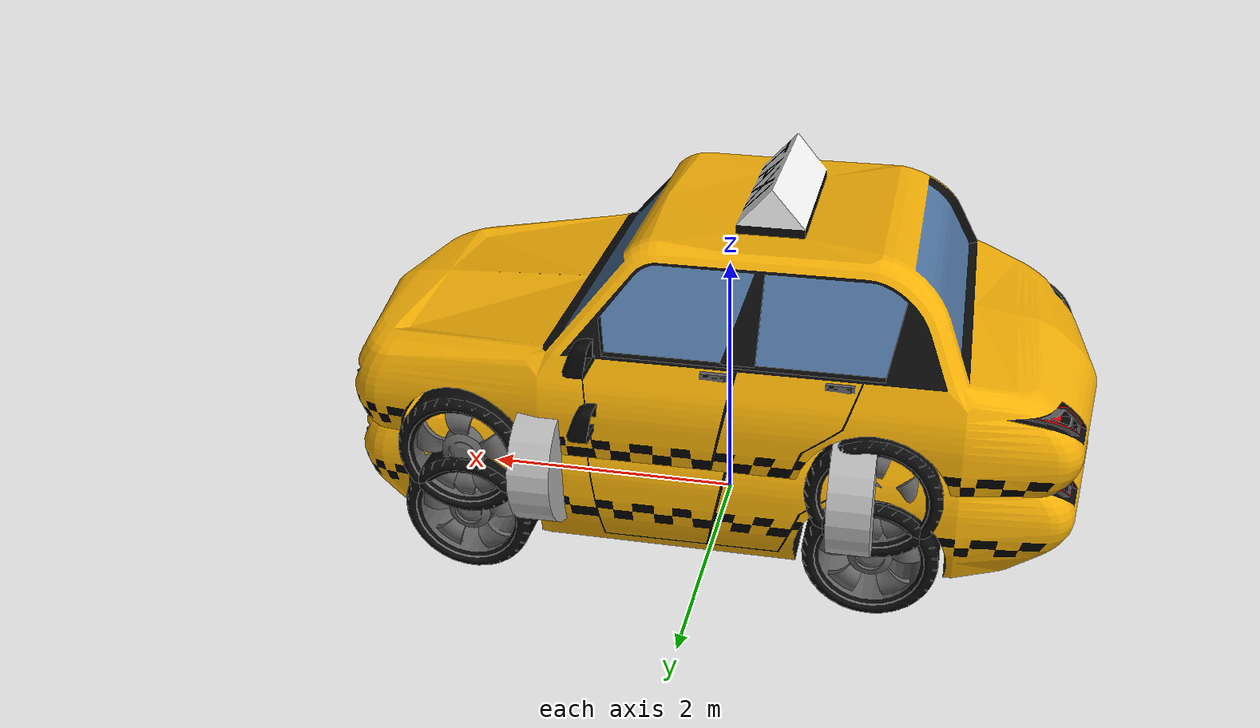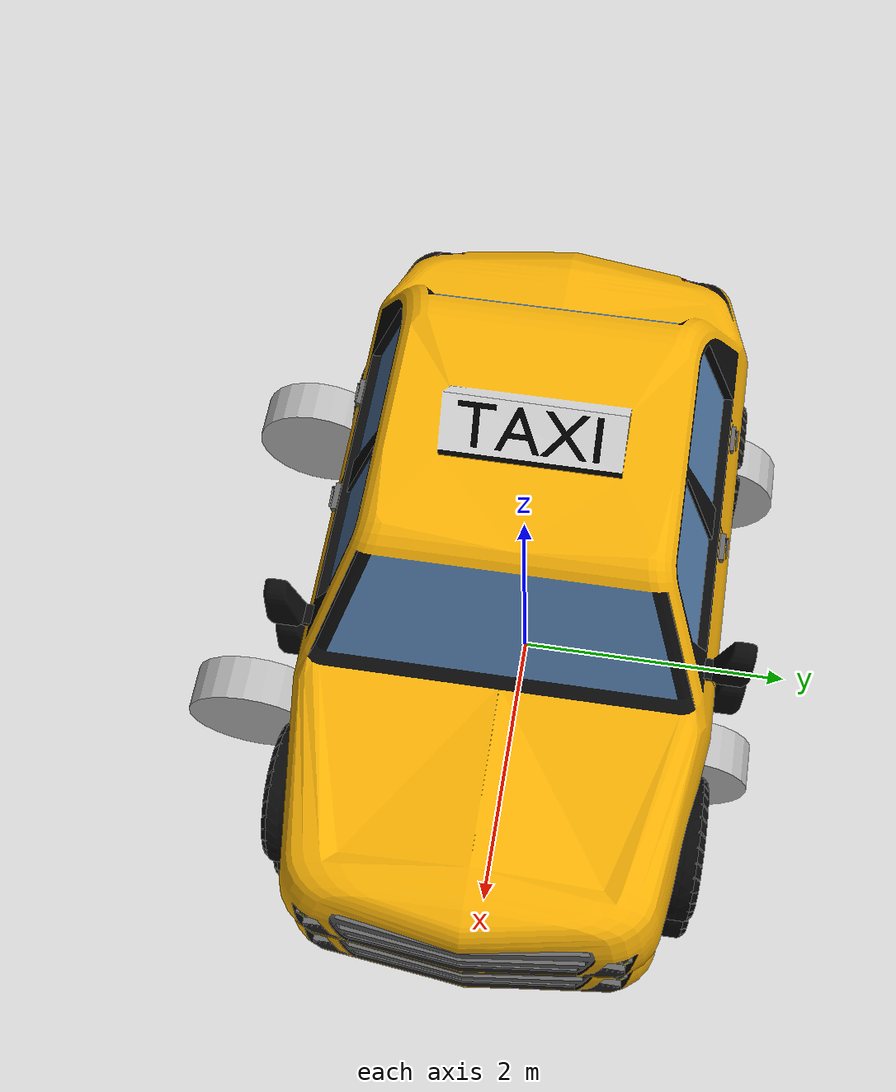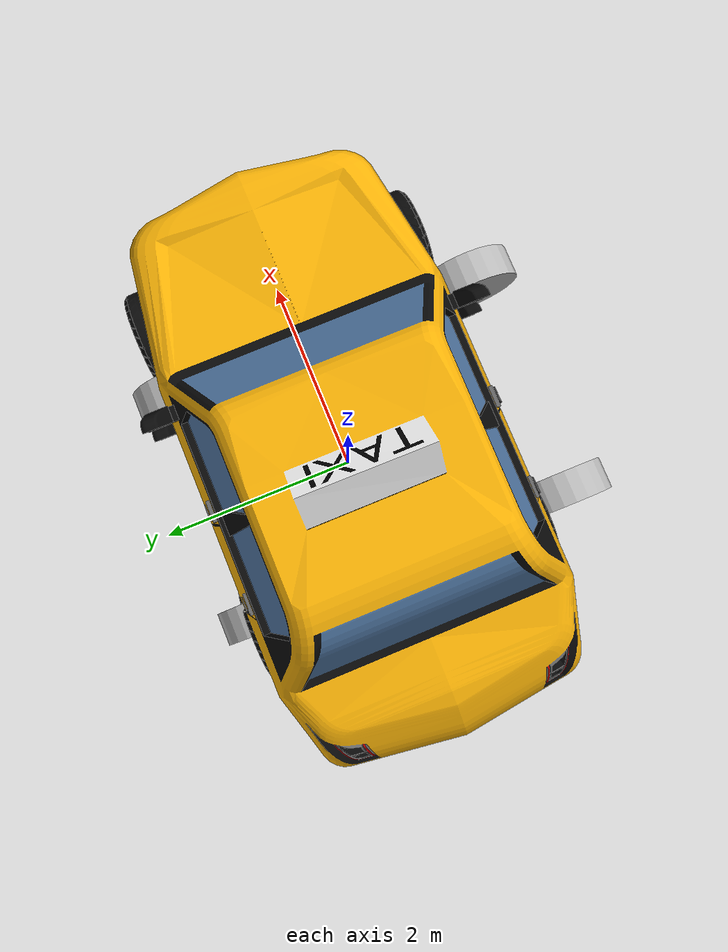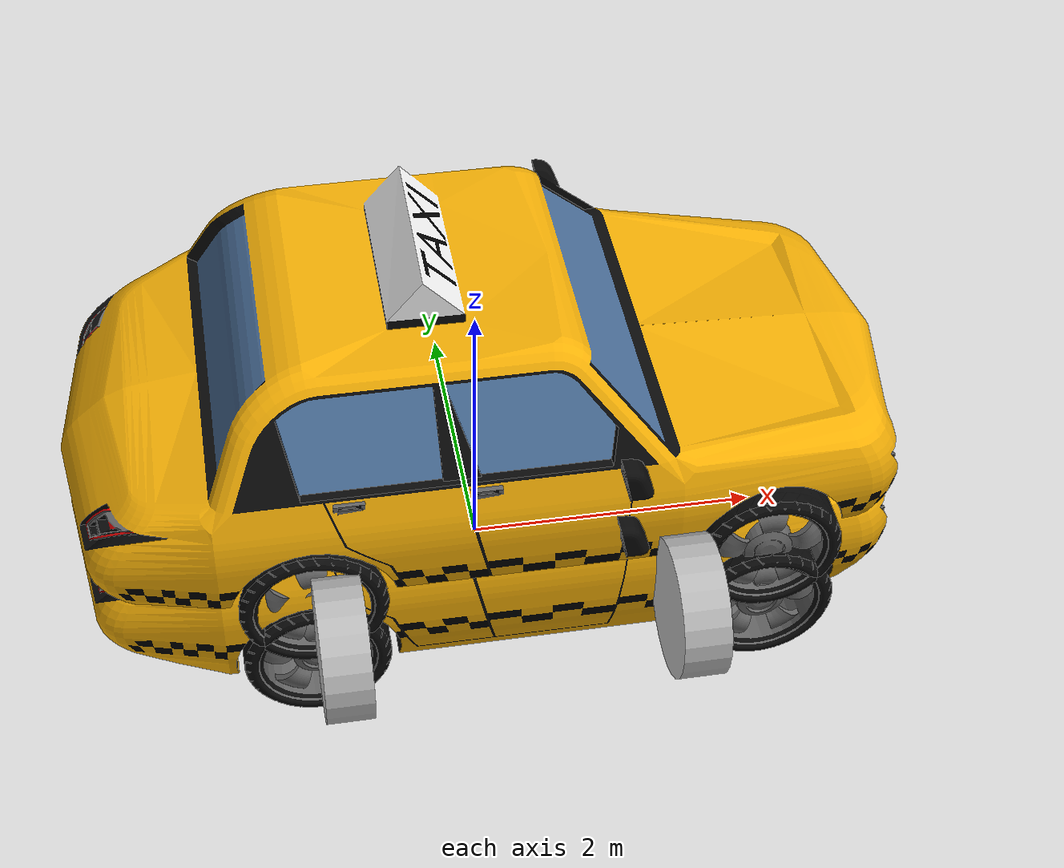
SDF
<sdf version="1.4">
 <world name="cityMedium">
  <include><uri>model://cityMedium</uri></include>
  <include><uri>model://yellowTaxi</uri><pose>0 0 0.5 0 0 0</pose></include>
  <include><uri>model://sun</uri></include>
 </world>
</sdf>

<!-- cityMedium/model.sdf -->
<sdf version="1.4">
<model name="cityMedium">
  <pose>0 0 0 0 0 0</pose>
  <static>true</static>
    <link name="city">
    	<pose>0 0 0.749745 0 0 0</pose>
      <collision name="collision">
            <geometry>
              <mesh>
            		<uri>model://cityMedium/meshes/model.dae</uri>
          		</mesh>
          </geometry>
     </collision>
      <visual name="visual">
        <geometry>
          <mesh>
            <uri>model://cityMedium/meshes/model.dae</uri>
        </mesh>
      </geometry>
    </visual>
  </link>
</model>
</sdf>

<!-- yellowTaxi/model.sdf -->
<sdf version="1.4">
<model name="yellowTaxi">
  <pose>0 0 0 0 0 0</pose>
  <static>false</static>
    <link name="car">
    	<pose>0 0 0.749745 0 0 0</pose>
      <collision name="collision">
            <geometry>
              <mesh>
            		<uri>model://yellowTaxi/meshes/model.dae</uri>
          		</mesh>
          </geometry>
     </collision>
      <visual name="visual">
        <geometry>
          <mesh>
            <uri>model://yellowTaxi/meshes/model.dae</uri>
        </mesh>
      </geometry>
    </visual>
  </link>
    <link name="front_right_wheel">
        <pose>1.1 -1.70000 0.448000 0 1.5707 0</pose>
         <inertial>
        <mass>12</mass>
        <inertia>
          <ixx>0.5</ixx>
          <ixy>0.0</ixy>
          <iyy>0.5</iyy>
          <ixz>0.0</ixz>
          <iyz>0.0</iyz>
          <izz>1.0</izz>
      </inertia>
    </inertial>
        <collision name="collision">
          <geometry>
            <cylinder>
              <radius>.45</radius>
              <length>.3</length>
          </cylinder>
        </geometry>
      </collision>
        <visual name="visual">
          <geometry>
            <cylinder>
              <radius>.45</radius>
              <length>.3</length>
          </cylinder>
        </geometry>
      </visual>
    </link>
      <link name="front_left_wheel">
        <pose>-1.100000 -1.70000 0.448000 0 1.5707 0</pose>
        <inertial>
        <mass>12</mass>
        <inertia>
          <ixx>0.5</ixx>
          <ixy>0.0</ixy>
          <iyy>0.5</iyy>
          <ixz>0.0</ixz>
          <iyz>0.0</iyz>
          <izz>1.0</izz>
      </inertia>
    </inertial>
        <collision name="collision">
          <geometry>
            <cylinder>
              <radius>.45</radius>
              <length>.3</length>
          </cylinder>
        </geometry>

      </collision>
        <visual name="visual">
          <geometry>
            <cylinder>
              <radius>.45</radius>
              <length>.3</length>
          </cylinder>
        </geometry>
      </visual>
    </link>

      <link name="front_left_steering_wheel_block">
        <pose>-1.100000 -1.70000 0.448000 0 1.5707 0</pose>
        <inertial>
        <mass>1</mass>
        <inertia>
          <ixx>1.0</ixx>
          <ixy>0.0</ixy>
          <iyy>1.0</iyy>
          <ixz>0.0</ixz>
          <iyz>0.0</iyz>
          <izz>1.0</izz>
      </inertia>
    </inertial>
        <collision name="collision">
          <geometry>
            <cylinder>
              <radius>0.05</radius>
              <length>0.1</length>
          </cylinder>
        </geometry>
      </collision>
        <visual name="visual">
          <geometry>
            <cylinder>
              <radius>0.05</radius>
              <length>0.1</length>
          </cylinder>
        </geometry>
      </visual>
		</link>

        <link name="front_right_steering_wheel_block">
        <pose>1.100000 -1.70000 0.448000 0 1.5707 0</pose>
        <inertial>
        <mass>1</mass>
        <inertia>
          <ixx>1.0</ixx>
          <ixy>0.0</ixy>
          <iyy>1.0</iyy>
          <ixz>0.0</ixz>
          <iyz>0.0</iyz>
          <izz>1.0</izz>
      </inertia>
    </inertial>
        <collision name="collision">
          <geometry>
            <cylinder>
              <radius>0.05</radius>
              <length>0.1</length>
          </cylinder>
        </geometry>
      </collision>
        <visual name="visual">
          <geometry>
            <cylinder>
              <radius>0.05</radius>
              <length>0.1</length>
          </cylinder>
        </geometry>
      </visual>
    </link>

      <link name="rear_left_wheel">
        <pose>1.1 1.242288 0.448000 0 1.5707 0</pose>
         <inertial>
        <mass>12</mass>
        <inertia>
          <ixx>0.5</ixx>
          <ixy>0.0</ixy>
          <iyy>0.5</iyy>
          <ixz>0.0</ixz>
          <iyz>0.0</iyz>
          <izz>1.0</izz>
      </inertia>
      </inertial>
        <collision name="collision">
          <geometry>
            <cylinder>
              <radius>.45</radius>
              <length>.3</length>
          </cylinder>
        </geometry>
          <max_contacts>1</max_contacts>
        <surface>
          <friction>
            <ode>
              <mu>1.0</mu>
              <mu2>1.0</mu2>
              <fdir1>0 0 1</fdir1>
              <slip1>0.0</slip1>
              <slip2>0.0</slip2>
          </ode>
        </friction>
          <contact>
            <ode>
              <min_depth>0.005</min_depth>
              <kp>1e8</kp>
          </ode>
        </contact>
      </surface>
      </collision>
        <visual name="visual">
          <geometry>
            <cylinder>
              <radius>.45</radius>
              <length>.3</length>
          </cylinder>
        </geometry>
      </visual>
    </link>

      <link name="rear_right_wheel">
        <pose>-1.1 1.242288 0.448000 0 1.5707 0</pose>
         <inertial>
        <mass>12</mass>
        <inertia>
          <ixx>0.5</ixx>
          <ixy>0.0</ixy>
          <iyy>0.5</iyy>
          <ixz>0.0</ixz>
          <iyz>0.0</iyz>
          <izz>1.0</izz>
      </inertia>
      </inertial>
        <collision name="collision">
          <geometry>
            <cylinder>
              <radius>.45</radius>
              <length>.3</length>
          </cylinder>
        </geometry>
          <max_contacts>1</max_contacts>
        <surface>
          <friction>
            <ode>
              <mu>1.0</mu>
              <mu2>1.0</mu2>
              <fdir1>0 0 1</fdir1>
              <slip1>0.0</slip1>
              <slip2>0.0</slip2>
          </ode>
        </friction>
          <contact>
            <ode>
              <min_depth>0.005</min_depth>
              <kp>1e8</kp>
          </ode>
        </contact>
      </surface>
      </collision>
        <visual name="visual">
          <geometry>
            <cylinder>
              <radius>.45</radius>
              <length>.3</length>
          </cylinder>
        </geometry>
      </visual>
    </link>

       <joint type="revolute" name="front_left_wheel_hinge">
        <pose>0 0 0 0 0 0</pose>
        <child>front_left_wheel</child>
        <parent>front_left_steering_wheel_block</parent>
        <axis>
          <xyz>1 0 0</xyz>
      </axis>
    </joint>
      <joint type="revolute" name="front_right_wheel_hinge">
        <pose>0 0 0 0 0 0</pose>
        <child>front_right_wheel</child>
        <parent>front_right_steering_wheel_block</parent>
        +
        <axis>
          <xyz>1 0 0</xyz>
      </axis>
    </joint>

      <joint type="revolute" name="front_left_steering_wheel">
        <pose>0 0 0 0 0 0</pose>
        <child>front_left_steering_wheel_block</child>
        <parent>car</parent>
        <axis>
        	 <xyz>0 0 1</xyz>
  	 			<dynamics>
          		<damping>500.0</damping>
        		</dynamics>
        	 <limit>
        	 		<lower>-0.52359</lower>
              <upper>0.52359</upper>
        </limit>
      </axis>
        <physics>
        <ode>
          <cfm_damping>1</cfm_damping>
          <limit>
            <cfm>0.000000</cfm>
            <erp>0.900000</erp>
        </limit>
      </ode>
    </physics>
    </joint>
      <joint type="revolute" name="front_right_steering_wheel">
        <pose>0 0 0 0 0 0</pose>
        <child>front_right_steering_wheel_block</child>
        <parent>car</parent>
        <axis>
        <xyz>0 0 1</xyz>
        		<dynamics>
          		<damping>500.0</damping>
        		</dynamics>
     		 <limit>
              <lower>-0.52359</lower>
              <upper>0.52359</upper>
        </limit>
      </axis>
        <physics>
        <ode>
          <cfm_damping>1</cfm_damping>
          <limit>
            <cfm>0.000000</cfm>
            <erp>0.900000</erp>
        </limit>
      </ode>
    </physics>
    </joint>

      <joint type="revolute" name="rear_right_wheel_hinge">
        <pose>0 0 0 0 0 0</pose>
        <child>rear_right_wheel</child>
        <parent>car</parent>
        <axis>
          <xyz>1 0 0</xyz>
      </axis>
    </joint>

      <joint type="revolute" name="rear_left_wheel_hinge">
        <pose>0 0 0 0 0 0</pose>
        <child>rear_left_wheel</child>
        <parent>car</parent>
        <axis>
          <xyz>1 0 0</xyz>
      </axis>
    </joint>
      <plugin name="carMotors" filename="libcarMotors.so">
        <front_right_joint>front_right_wheel_hinge</front_right_joint>
      	<front_left_joint>front_left_wheel_hinge</front_left_joint>
			  <front_right_steering_joint>front_right_steering_wheel</front_right_steering_joint>
			  <front_left_steering_joint>front_left_steering_wheel</front_left_steering_joint>
    </plugin>
     <plugin name="pose3d" filename="libcarPose3D.so"/>
</model>
</sdf>
